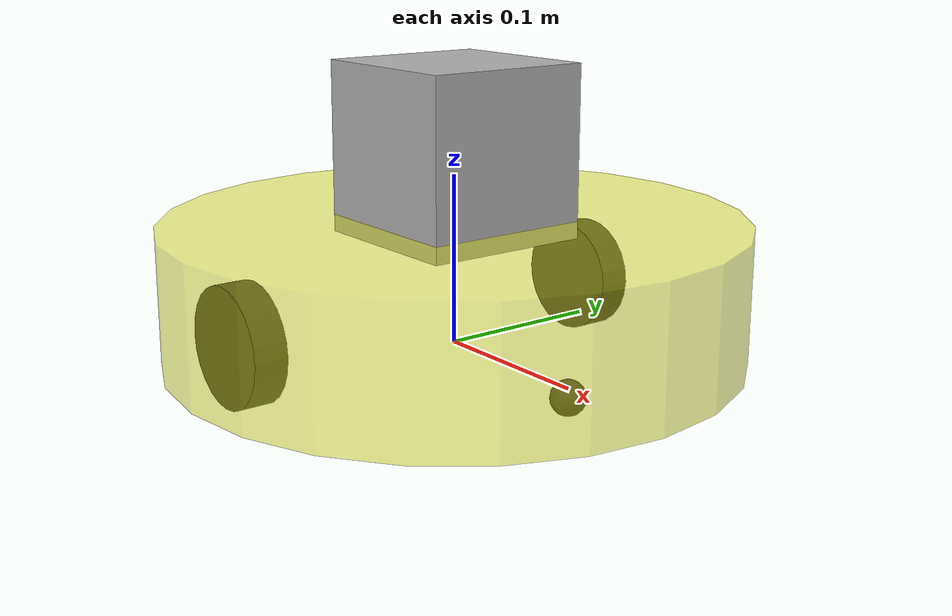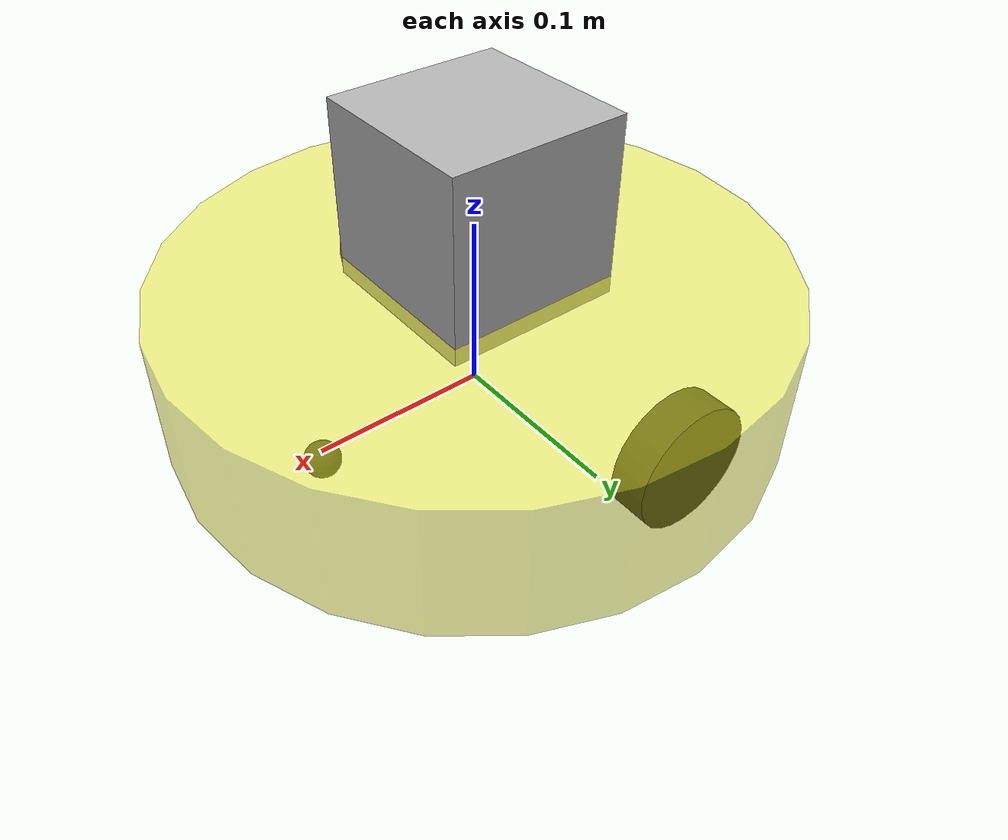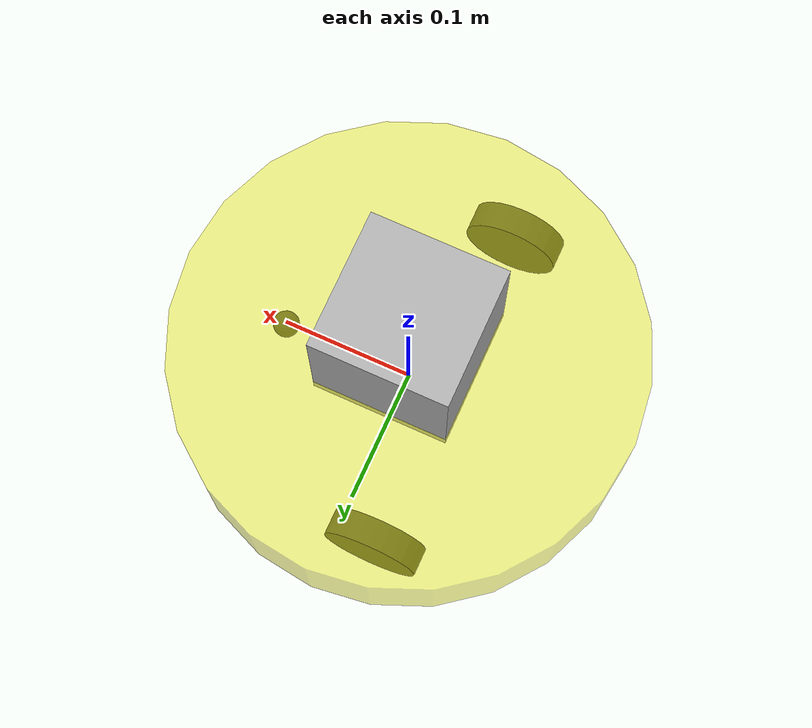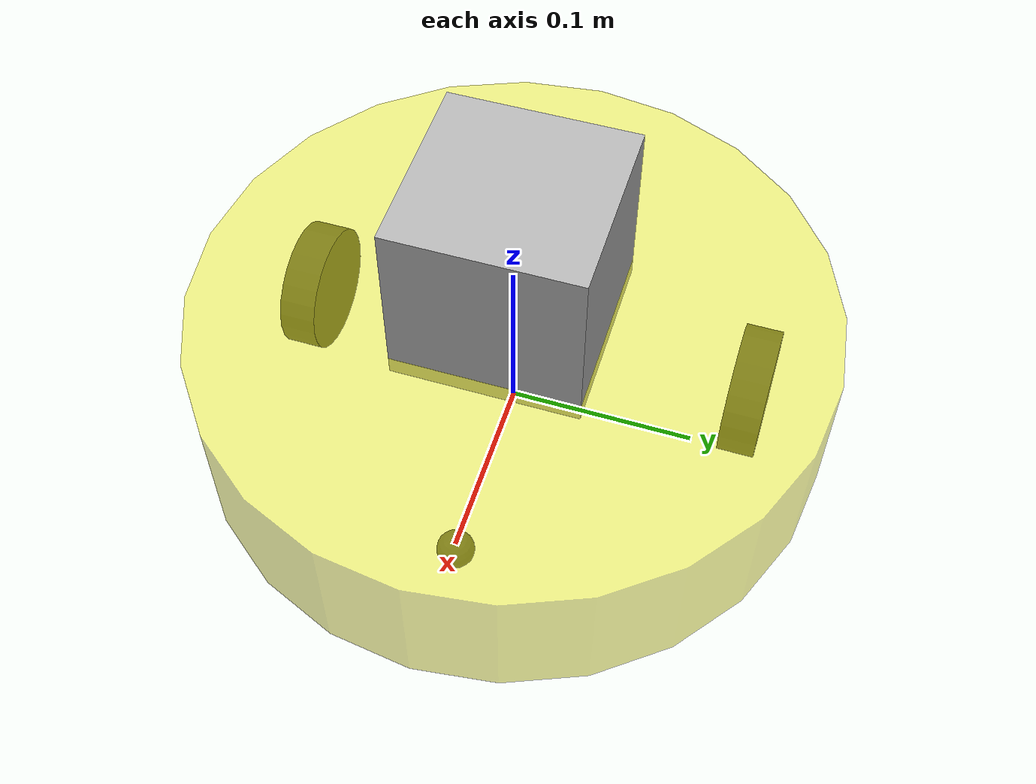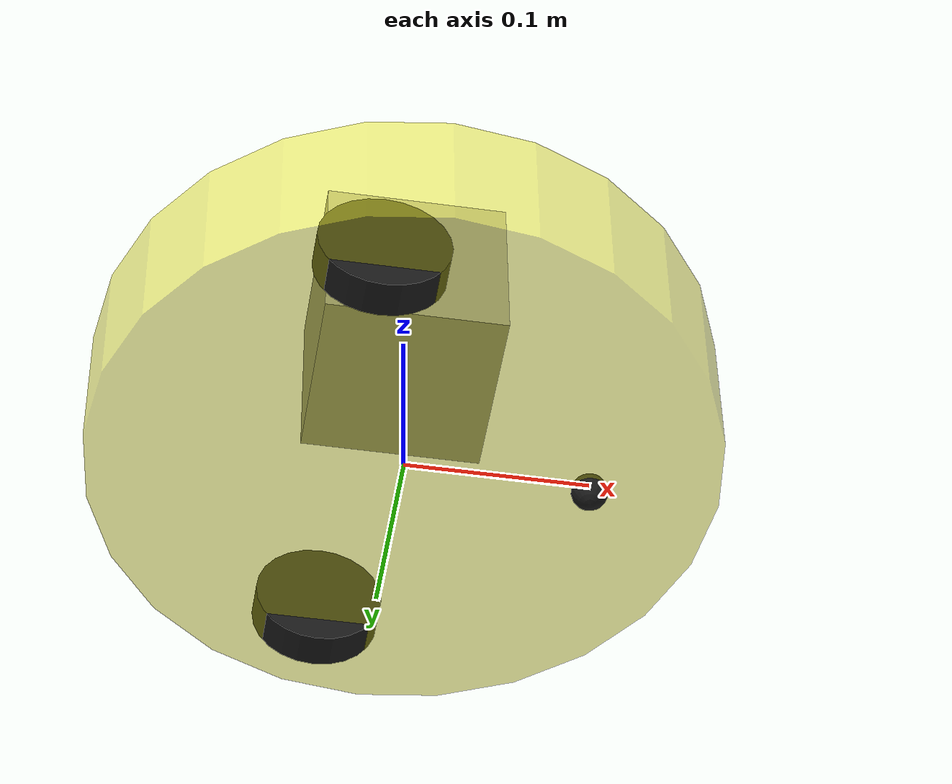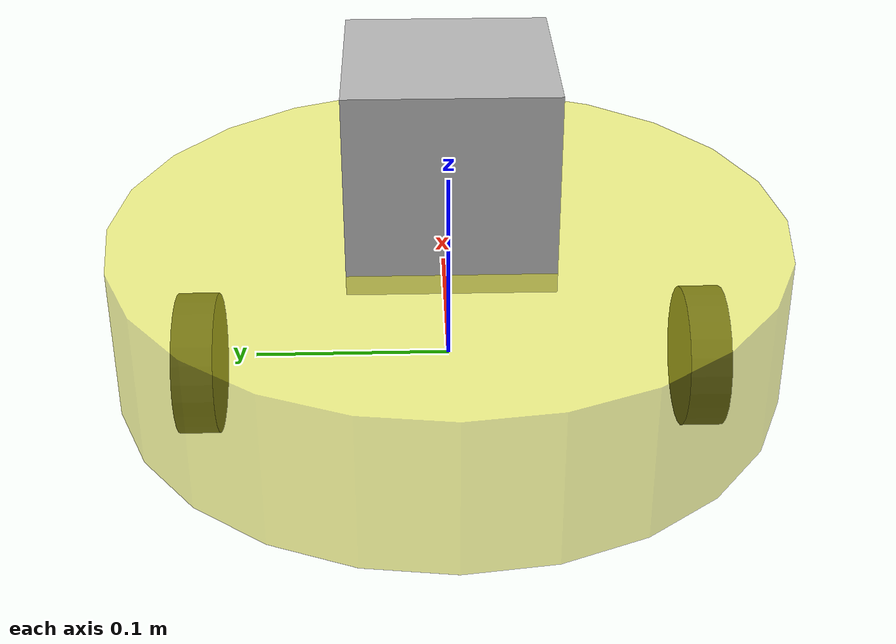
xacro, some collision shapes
<?xml version="1.0"?>
<robot name="car_robot_rplidar" xmlns:xacro="http://www.ros.org/wiki/xacro">

    <!-- 1. 包含底盘和雷达的xacro文件 -->
    <xacro:include filename="$(find urdf_learning)/urdf/car_chassis_2diff_gazebo.xacro" />
    <xacro:include filename="$(find urdf_learning)/urdf/sensors/rplidar_gazebo.xacro" />

    <!-- 2. 实例化底盘和雷达 -->
    <xacro:car_chassis_2diff/>
    <xacro:rplidar_A1M8/>

    <!-- 3. 添加关节，将雷达(laser_link)固定在底盘(base_link)上 -->
    <joint name="rplidar_joint" type="fixed">
      <!-- 将雷达放在底盘顶部中心位置 -->
      <origin xyz="0 0 0.08" rpy="0 0 0" /> <!-- base_height/2 = 0.08/2 = 0.04 -->
      <parent link="base_link"/>
      <child link="laser_link"/>
    </joint>

</robot>

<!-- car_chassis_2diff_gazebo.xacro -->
<robot name="car_chassis_2diff" xmlns:xacro="http://www.ros.org/wiki/xacro">

    <!-- 包含惯性计算宏 -->
    <xacro:include filename="$(find urdf_learning)/urdf/inertia_macros.xacro"/>

    <!-- ============================ PROPERTY LIST (保持不变) ============================ -->
    <xacro:property name="PI" value="3.14159265359"/>
    <xacro:property name="base_radius" value="0.17"/>
    <xacro:property name="base_height" value="0.08"/>
    <xacro:property name="wheel_radius" value="0.035"/> <!-- 修正: 与之前代码统一 -->
    <xacro:property name="wheel_length" value="0.02"/>
    <xacro:property name="caster_radius" value="0.01"/>
    <xacro:property name="base_mass" value="2.0"/>
    <xacro:property name="wheel_mass" value="0.05"/>
    <xacro:property name="motor_mass" value="0.1"/>
    <xacro:property name="caster_mass" value="0.05"/>
    <xacro:property name="motor_joint_x" value="-0.03"/>
    <xacro:property name="motor_joint_y" value="0.1"/>
    <xacro:property name="motor_joint_z" value="-0.02"/>
    <xacro:property name="wheel_joint_y" value="0.025"/>
    <xacro:property name="caster_joint_x" value="0.1"/>
    <xacro:property name="caster_joint_z" value="-0.04"/>

    <!-- ============================ COMPONENT MACRO DEFINITIONS ============================ -->
    <!-- 【修正】将所有组件宏的定义都放在顶层 -->

    <!-- *** Macro for robot base and footprint *** -->
    <xacro:macro name="base_footprint_and_chassis">
        <link name="base_footprint"/>
        <link name="base_link">
            <visual>
                <geometry><cylinder length="${base_height}" radius="${base_radius}"/></geometry>
                <material name="yellow"><color rgba="0.9 0.9 0.1 0.5"/></material>
            </visual>
            <collision>
                <geometry><cylinder length="${base_height}" radius="${base_radius}"/></geometry>
            </collision>
            <xacro:cylinder_inertial m="${base_mass}" r="${base_radius}" h="${base_height}"/>
        </link>
        <gazebo reference="base_link"><material>Gazebo/Yellow</material></gazebo>
        <joint name="base_footprint_joint" type="fixed">
            <parent link="base_footprint"/>
            <child link="base_link"/>
            <origin xyz="0 0 ${wheel_radius}"/>
        </joint>
    </xacro:macro>

    <!-- *** Macro for robot wheel (motor + wheel) *** -->
    <xacro:macro name="wheel_assembly" params="prefix y_reflect">
        <link name="${prefix}_motor">
            <inertial>
                <mass value="${motor_mass}"/>
                <inertia ixx="0.001" ixy="0" ixz="0" iyy="0.001" iyz="0" izz="0.001"/>
            </inertial>
        </link>
        <joint name="${prefix}_motor_joint" type="fixed">
            <parent link="base_link"/>
            <child link="${prefix}_motor"/>
            <origin xyz="${motor_joint_x} ${y_reflect*motor_joint_y} ${motor_joint_z}"/>
        </joint>

        <link name="${prefix}_wheel_link">
            <visual>
                <origin rpy="${PI/2} 0 0"/>
                <geometry><cylinder radius="${wheel_radius}" length="${wheel_length}"/></geometry>
                <material name="black"><color rgba="0.1 0.1 0.1 1"/></material>
            </visual>
            <collision>
                <origin rpy="${PI/2} 0 0"/>
                <geometry><cylinder radius="${wheel_radius}" length="${wheel_length}"/></geometry>
            </collision>
            <xacro:cylinder_inertial m="${wheel_mass}" r="${wheel_radius}" h="${wheel_length}"/>
        </link>
        <gazebo reference="${prefix}_wheel_link"><material>Gazebo/Black</material></gazebo>

        <joint name="${prefix}_wheel_joint" type="continuous">
            <parent link="${prefix}_motor"/>
            <child link="${prefix}_wheel_link"/>
            <origin xyz="0 ${y_reflect*wheel_joint_y} 0"/>
            <axis xyz="0 1 0"/>
        </joint>
    </xacro:macro>

    <!-- *** Macro for robot caster *** -->
    <xacro:macro name="caster">
        <link name="caster_link">
            <visual>
                <geometry><sphere radius="${caster_radius}"/></geometry>
                <material name="black"/>
            </visual>
            <collision>
                <geometry><sphere radius="${caster_radius}"/></geometry>
            </collision>
            <xacro:sphere_inertial m="${caster_mass}" r="${caster_radius}"/>
        </link>
        <gazebo reference="caster_link"><material>Gazebo/Black</material></gazebo>
        <joint name="caster_joint" type="fixed">
            <parent link="base_link"/>
            <child link="caster_link"/>
            <origin xyz="${caster_joint_x} 0 ${caster_joint_z}"/>
        </joint>
    </xacro:macro>

    <!-- ============================ ASSEMBLY MACRO ============================ -->
    <!-- 【修正】这个宏只负责调用(实例化)上面定义的组件 -->
    <xacro:macro name="car_chassis_2diff">
        <xacro:base_footprint_and_chassis/>
        <xacro:wheel_assembly prefix="lf" y_reflect="1" />
        <xacro:wheel_assembly prefix="rt" y_reflect="-1" />
        <xacro:caster/>

        <gazebo>
            <plugin name="differential_drive_controller" filename="libgazebo_ros_diff_drive.so">
                <alwaysOn>true</alwaysOn>
                <updateRate>100</updateRate>
                <leftJoint>lf_wheel_joint</leftJoint>
                <rightJoint>rt_wheel_joint</rightJoint>
                <wheelSeparation>${2 * (motor_joint_y + wheel_joint_y)}</wheelSeparation>
                <wheelDiameter>${2 * wheel_radius}</wheelDiameter>
                <torque>5</torque>
                <commandTopic>cmd_vel</commandTopic>
                <odometryTopic>odom</odometryTopic>
                <odometryFrame>odom</odometryFrame>
                <robotBaseFrame>base_footprint</robotBaseFrame>
                <!--
                  修改 1: 禁用插件发布轮子关节的TF。
                  将这个任务完全交给 robot_state_publisher，消除关于轮子的TF冲突。
                -->
                <publishWheelJointState>false</publishWheelJointState>

                <!--
                  修改 2: 明确指定插件发布 odom -> base_footprint 的TF。
                  虽然这是默认行为，但明确写出来可以避免歧义，并有助于调试。
                  这个参数在不同ROS版本中可能有不同名称，publishTf 是较新的名称。
                -->
                <publishTf>1</publishTf>
            </plugin>
        </gazebo>
    </xacro:macro>
</robot>

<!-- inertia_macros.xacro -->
<!-- inertia_macros.xacro -->
<robot xmlns:xacro="http://www.ros.org/wiki/xacro">

    <!-- Macro for inertia calculation -->
    <xacro:macro name="sphere_inertial" params="m r">
        <inertial>
            <mass value="${m}" />
            <inertia ixx="${2*m*r*r/5}" ixy="0" ixz="0"
                     iyy="${2*m*r*r/5}" iyz="0" izz="${2*m*r*r/5}" />
        </inertial>
    </xacro:macro>

    <xacro:macro name="cylinder_inertial" params="m r h">
        <inertial>
            <mass value="${m}" />
            <inertia ixx="${m*(3*r*r+h*h)/12}" ixy = "0" ixz = "0"
                     iyy="${m*(3*r*r+h*h)/12}" iyz = "0" izz="${m*r*r/2}" />
        </inertial>
    </xacro:macro>

    <xacro:macro name="box_inertial" params="m x y z">
        <inertial>
            <mass value="${m}" />
            <inertia ixx="${m*(y*y+z*z)/12}" ixy = "0" ixz = "0"
                     iyy="${m*(x*x+z*z)/12}" iyz = "0" izz="${m*(x*x+y*y)/12}" />
        </inertial>
    </xacro:macro>

</robot>

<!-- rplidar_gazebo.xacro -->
<robot xmlns:xacro="http://www.ros.org/wiki/xacro">

    <!-- 包含惯性宏，因为我们用到了 box_inertial -->
    <xacro:include filename="$(find urdf_learning)/urdf/inertia_macros.xacro"/>

    <!-- 1. 属性定义 -->
    <!-- PROPERTY LIST -->
    <xacro:property name="A1M8_size" value="0.1"/> <!-- 估算雷达的碰撞体尺寸 -->
    <xacro:property name="A1M8_mass" value="0.2"/>  <!-- 0.2kg -->

    <!-- 2. 宏定义 -->
    <!-- Macro for rplidar A1M8 -->
    <xacro:macro name="rplidar_A1M8">
        <link name="laser_link">
            <visual>
                <origin xyz="0 0 0" rpy="0 0 0"/>
                <geometry>
                    <!-- 使用提供的3D模型文件进行可视化 -->
                    <mesh filename="package://urdf_learning/meshes/rplidar.dae"/>
                </geometry>
            </visual>
            <collision>
                <origin xyz="0 0 0" rpy="0 0 0"/>
                <geometry>
                    <box size="${A1M8_size} ${A1M8_size} ${A1M8_size}"/>
                </geometry>
            </collision>
            <xacro:box_inertial m="${A1M8_mass}" x="${A1M8_size}" y="${A1M8_size}" z="${A1M8_size}"/>
        </link>

        <!-- 3. Gazebo 插件配置 -->
        <gazebo reference="laser_link">
            <sensor type="ray" name="A1M8_sensor">
                <pose>0 0 0 0 0 0</pose>
                <visualize>true</visualize> <!-- 设置为true可以在Gazebo中看到蓝色的激光束 -->
                <update_rate>10</update_rate>
                <ray>
                    <scan>
                        <horizontal>
                            <samples>360</samples>
                            <resolution>1</resolution>
                            <min_angle>-3.14159</min_angle>
                            <max_angle>3.14159</max_angle>
                        </horizontal>
                    </scan>
                    <range>
                        <min>0.15</min>
                        <max>12.0</max>
                        <resolution>0.01</resolution>
                    </range>
                    <noise>
                        <type>gaussian</type>
                        <mean>0.0</mean>
                        <stddev>0.01</stddev>
                    </noise>
                </ray>
                <plugin name="gazebo_rplidar" filename="libgazebo_ros_laser.so">
                    <topicName>/scan</topicName>
                    <frameName>laser_link</frameName>
                </plugin>
            </sensor>
        </gazebo>
    </xacro:macro>

</robot>
